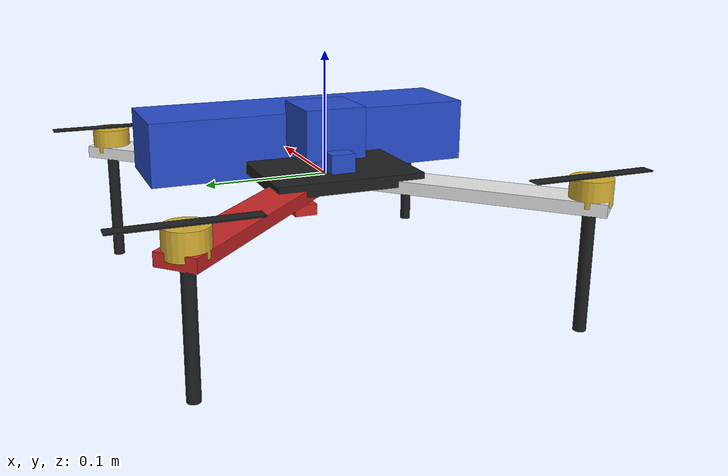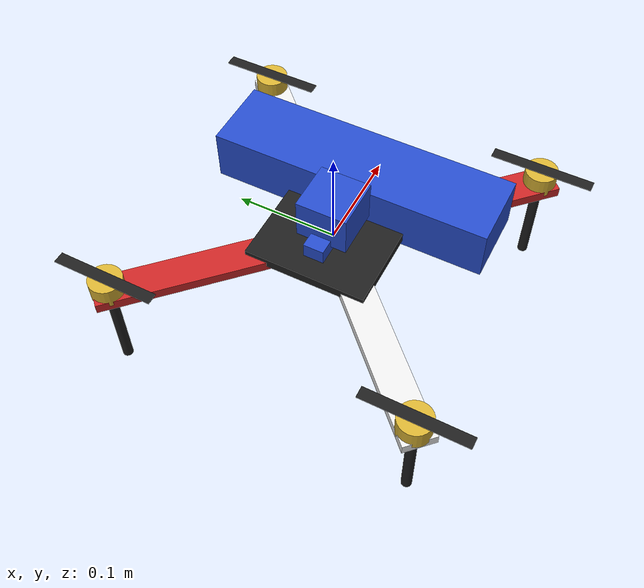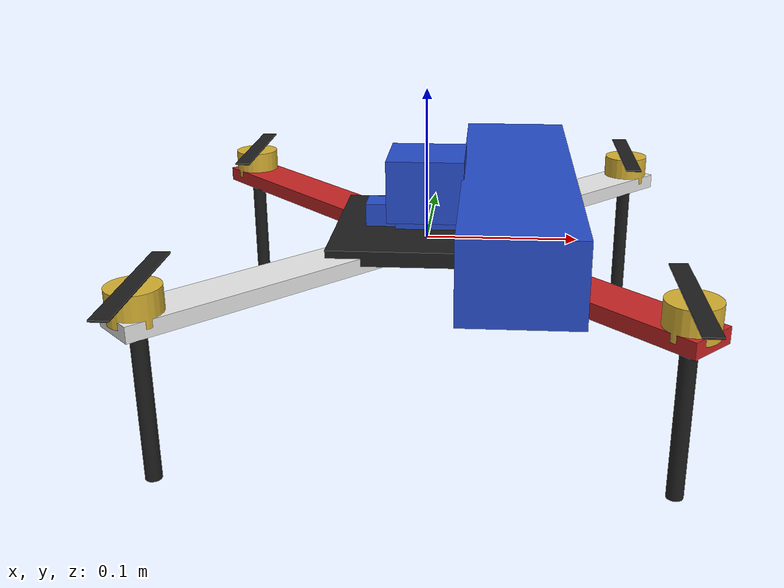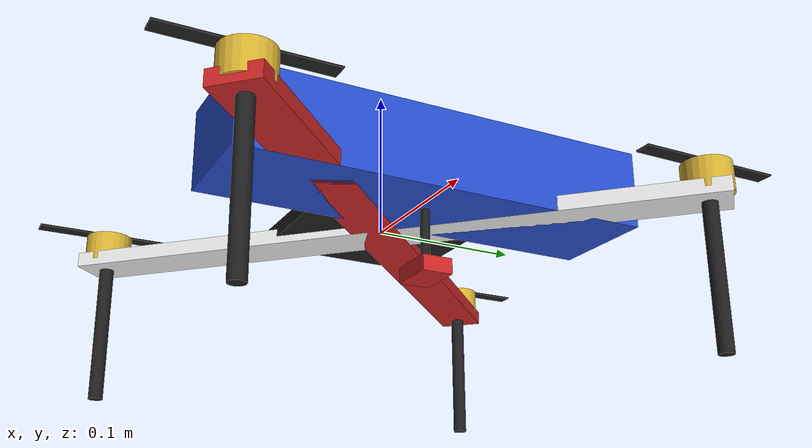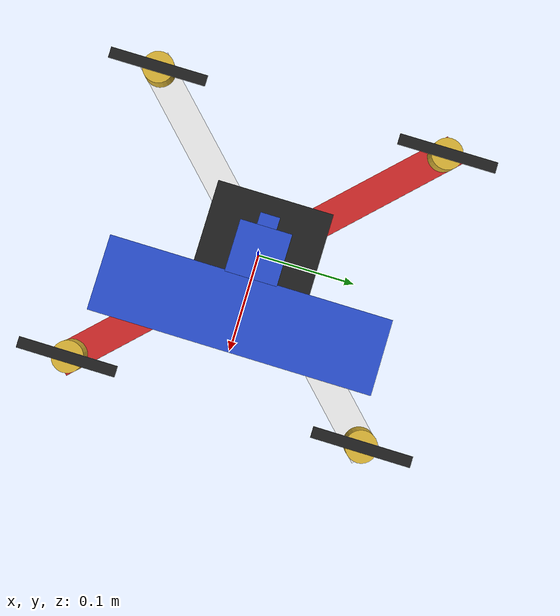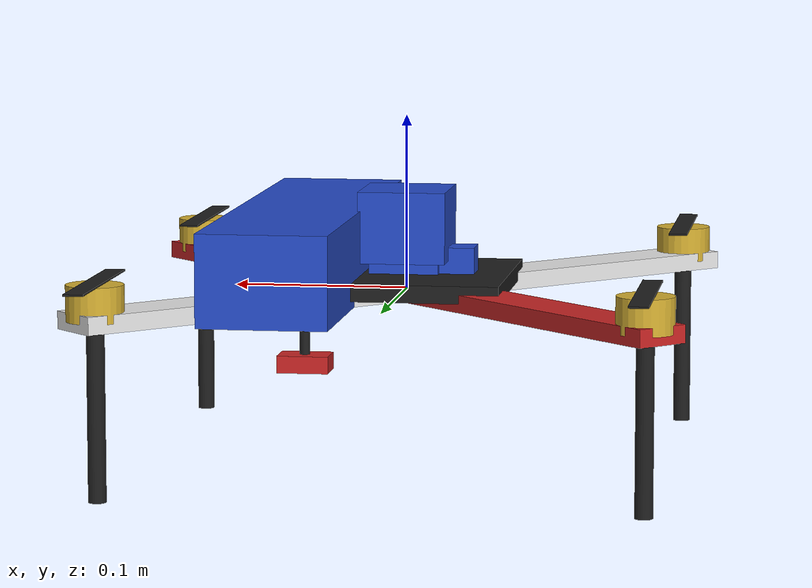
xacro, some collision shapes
<?xml version="1.0"?>
<robot xmlns:xacro="http://www.ros.org/wiki/xacro" name="quad">
	<xacro:property name="width" value="0.0315" />
	<xacro:property name="length" value="0.45" />
	<xacro:property name="height" value="0.01" />
	<xacro:property name="mass_fr" value="0.5" />
	<xacro:property name="mass_pr" value="0.0055" />
	<xacro:property name="pi_value" value="3.14159263" />
	<xacro:property name="radiusp" value="0.20" />
	<xacro:property name="prop_loc" value="0.15909" />
	<xacro:include filename="$(find quadcopter)/urdf/material.xacro" />
	<xacro:include filename="$(find quadcopter)/urdf/quad.gazebo" />
	<!-- Define inertial macro -->
	<xacro:macro name="default_inertial" params="mass p ix_value iy_value iz_value" >
		<inertial>
			<origin xyz="0 0 0" rpy="0 0 ${p}" />
			<mass value="${mass}" />
			<inertia ixx="${ix_value}" ixy="0" ixz="0"
					 iyy="${iy_value}" iyz="0" izz="${iz_value}" />
		</inertial>
	</xacro:macro>
	<link name="base_link1">
		<visual>
			<origin xyz="0 0 0" rpy="0 0 ${pi_value/4}" />

			<geometry>
				<box size="${width} ${length} ${height}" />
			</geometry>

			<material name="red" />
		</visual>

		<collision>
			<origin xyz="0 0 0" rpy="0 0 ${pi_value/4}" />

			<geometry>
				<box size="${width} ${length} ${height}" />
			</geometry>
		</collision>

		<xacro:default_inertial mass="${mass_fr}" p="${pi_value/4}" ix_value="${0.04989/2}" iy_value="${0.04989/2}" iz_value="${0.24057/2}" />

	</link>
	<link name="base_link2">
		<visual>
			<origin xyz="0 0 0" rpy="0 0 ${-pi_value/4}" />

			<geometry>
				<box size="${width} ${length} ${height}" />
			</geometry>

			<material name="white" />
		</visual>

		<collision>
			<origin xyz="0 0 0" rpy="0 0 ${-pi_value/4}" />

			<geometry>
				<box size="${width} ${length} ${height}" />
			</geometry>
		</collision>

		<xacro:default_inertial mass="${mass_fr}" p="${-pi_value/4}" ix_value="${0.04989/2}" iy_value="${0.04989/2}" iz_value="${0.24057/2}" />
	</link>
	<link name="plate1">
		<visual>
			<origin xyz="0 0 0" rpy="0 0 0" />

			<geometry>
				<box size="${0.12} ${0.12} ${0.01}" />
			</geometry>

			<material name="black" />
		</visual>

		<collision>
			<origin xyz="0 0 0" rpy="0 0 0" />

			<geometry>
				<box size="${0.12} ${0.12} ${0.01}" />
			</geometry>
		</collision>

		<xacro:default_inertial mass="${0.01}" p="${0}" ix_value="${0}" iy_value="${0}" iz_value="${2.4-5}" />
	</link>
	<link name="plate2">
		<visual>
			<origin xyz="0 0 0" rpy="0 0 0" />

			<geometry>
				<box size="${0.04} ${0.03} ${0.03}" />
			</geometry>

			<material name="blue" />
		</visual>

		<collision>
			<origin xyz="0 0 0" rpy="0 0 0" />

			<geometry>
				<box size="${0.04} ${0.03} ${0.03}" />
			</geometry>
		</collision>

		<xacro:default_inertial mass="${0.005}" p="${0}" ix_value="${0}" iy_value="${0}" iz_value="${8.1666-7}" />
	</link>
	<link name="cyl1">
		<visual>
			<origin xyz="0 0 0" rpy="0 0 0" />

			<geometry>
				<cylinder radius="0.016" length="0.02" />
			</geometry>

			<material name="golden" />
		</visual>

		<collision>
			<origin xyz="0 0 0" rpy="0 0 0" />

			<geometry>
				<cylinder radius="0.016" length="0.02" />
			</geometry>
		</collision>

		<xacro:default_inertial mass="${0.01}" p="${0}" ix_value="${8.95e-6}" iy_value="${8.95e-6}" iz_value="${2.23e-4}" />
	</link>
	<link name="cyl2">
		<visual>
			<origin xyz="0 0 0" rpy="0 0 0" />

			<geometry>
				<cylinder radius="0.016" length="0.02" />
			</geometry>

			<material name="golden" />
		</visual>

		<collision>
			<origin xyz="0 0 0" rpy="0 0 0" />

			<geometry>
				<cylinder radius="0.016" length="0.02" />
			</geometry>
		</collision>

		<xacro:default_inertial mass="${0.01}" p="${0}" ix_value="${8.95e-6}" iy_value="${8.95e-6}" iz_value="${2.23e-4}" />
	</link>
	<link name="cyl3">
		<visual>
			<origin xyz="0 0 0" rpy="0 0 0" />

			<geometry>
				<cylinder radius="0.016" length="0.02" />
			</geometry>

			<material name="golden" />
		</visual>

		<collision>
			<origin xyz="0 0 0" rpy="0 0 0" />

			<geometry>
				<cylinder radius="0.016" length="0.02" />
			</geometry>
		</collision>

		<xacro:default_inertial mass="${0.01}" p="${0}" ix_value="${8.95e-6}" iy_value="${8.95e-6}" iz_value="${2.23e-4}" />
	</link>
	<link name="cyl4">
		<visual>
			<origin xyz="0 0 0" rpy="0 0 0" />

			<geometry>
				<cylinder radius="0.016" length="0.02" />
			</geometry>

			<material name="golden" />
		</visual>

		<collision>
			<origin xyz="0 0 0" rpy="0 0 0" />

			<geometry>
				<cylinder radius="0.016" length="0.02" />
			</geometry>
		</collision>

		<xacro:default_inertial mass="${0.01}" p="${0}" ix_value="${8.95e-6}" iy_value="${8.95e-6}" iz_value="${2.23e-4}" />
	</link>

	<link name="stand1">
		<visual>
			<origin xyz="0 0 0" rpy="0 0 0" />

			<geometry>
				<cylinder radius="0.005" length="0.1" />
			</geometry>

			<material name="black" />
		</visual>

		<collision>
			<origin xyz="0 0 0" rpy="0 0 0" />

			<geometry>
				<cylinder radius="0.005" length="0.1" />
			</geometry>
		</collision>

		<xacro:default_inertial mass="${0.01}" p="${0}" ix_value="${8.95e-6}" iy_value="${8.95e-6}" iz_value="${2.23e-4}" />
	</link>

	<link name="stand2">
		<visual>
			<origin xyz="0 0 0" rpy="0 0 0" />

			<geometry>
				<cylinder radius="0.005" length="0.1" />
			</geometry>

			<material name="black" />
		</visual>

		<collision>
			<origin xyz="0 0 0" rpy="0 0 0" />

			<geometry>
				<cylinder radius="0.005" length="0.1" />
			</geometry>
		</collision>

		<xacro:default_inertial mass="${0.01}" p="${0}" ix_value="${8.95e-6}" iy_value="${8.95e-6}" iz_value="${2.23e-4}" />
	</link>

	<link name="stand3">
		<visual>
			<origin xyz="0 0 0" rpy="0 0 0" />

			<geometry>
				<cylinder radius="0.005" length="0.1" />
			</geometry>

			<material name="black" />
		</visual>

		<collision>
			<origin xyz="0 0 0" rpy="0 0 0" />

			<geometry>
				<cylinder radius="0.005" length="0.1" />
			</geometry>
		</collision>

		<xacro:default_inertial mass="${0.01}" p="${0}" ix_value="${8.95e-6}" iy_value="${8.95e-6}" iz_value="${2.23e-4}" />
	</link>

	<link name="stand4">
		<visual>
			<origin xyz="0 0 0" rpy="0 0 0" />

			<geometry>
				<cylinder radius="0.005" length="0.1" />
			</geometry>

			<material name="black" />
		</visual>

		<collision>
			<origin xyz="0 0 0" rpy="0 0 0" />

			<geometry>
				<cylinder radius="0.005" length="0.1" />
			</geometry>
		</collision>

		<xacro:default_inertial mass="${0.01}" p="${0}" ix_value="${8.95e-6}" iy_value="${8.95e-6}" iz_value="${2.23e-4}" />
	</link>

	<link name="camera_support">
		<visual>
			<origin xyz="0 0 0" rpy="0 0 0" />

			<geometry>
				<cylinder radius="0.003" length="0.04" />
			</geometry>

			<material name="black" />
		</visual>

		<collision>
			<origin xyz="0 0 0" rpy="0 0 0" />

			<geometry>
				<cylinder radius="0.003" length="0.04" />
			</geometry>
		</collision>

		<xacro:default_inertial mass="${0.01}" p="${0}" ix_value="${8.95e-6}" iy_value="${8.95e-6}" iz_value="${2.23e-4}" />
	</link>

	<link name="camera_link">
		<visual>
			<origin xyz="0 0 0" rpy="0 0 0" />
			<geometry>
				<box size="0.03 0.02 0.01" />
			</geometry>

			<material name="red" />

		</visual>

		<collision>
			<origin xyz="0 0 0" rpy="0 0 0" />
			<geometry>
				<box size="0.03 0.01 0.01" />
			</geometry>
		</collision>

		<xacro:default_inertial mass="${1e-5}" p="${0}" ix_value="${1e-6}" iy_value="${1e-6}" iz_value="${1e-6}" />
	</link>

	<link name="depth_camera_link">
		<visual>
			<origin xyz="0 0 0" rpy="0 0 0" />
			<geometry>
				<mesh filename="package://quadcopter/meshes/kinect.dae" scale="0.5 0.4 0.3" />
			</geometry>

			<material name="blue" />

		</visual>

		<collision>
			<origin xyz="0 0 0" rpy="0 0 0" />
			<geometry>
				<box size="0.073000 0.276000 0.052000" />
			</geometry>
		</collision>

		<xacro:default_inertial mass="${1e-5}" p="${0}" ix_value="${1e-6}" iy_value="${1e-6}" iz_value="${1e-6}" />
	</link>

	<link name="lidar_link">
		<visual>
			<origin xyz="0 0 0" rpy="0 0 0" />
			<geometry>
				<mesh filename="package://quadcopter/meshes/hokuyo.dae" scale="0.5 0.5 0.5" />
			</geometry>

			<material name="blue" />

		</visual>

		<collision>
			<origin xyz="0 0 -0.0145" rpy="0 0 0" />
			<geometry>
				<box size="0.05 0.05 0.041" />
			</geometry>
		</collision>
        <collision>
			<origin xyz="0 0 0.0205" rpy="0 0 0" />
			<geometry>
				<cylinder radius="0.021" length="0.029" />
			</geometry>
		</collision>

		<xacro:default_inertial mass="${1e-5}" p="${0}" ix_value="${1e-6}" iy_value="${1e-6}" iz_value="${1e-6}" />
	</link>

	<link name="imu_link">
		<visual>
			<origin xyz="0 0 0" rpy="0 0 0" />
			<geometry>
				<box size="0.02 0.02 0.02" />
			</geometry>

			<material name="blue" />

		</visual>

		<collision>
			<origin xyz="0 0 0" rpy="0 0 0" />
			<geometry>
				<box size="0.02 0.02 0.02" />
			</geometry>
		</collision>

		<xacro:default_inertial mass="${1e-5}" p="${0}" ix_value="${1e-6}" iy_value="${1e-6}" iz_value="${1e-6}" />
	</link>

	<!-- Propellers of the quad: fr, fl, br, bl -->
	<link name="prop_front_right">
		<visual>
			<origin xyz="0 0 0" rpy="0 0 0" />

			<geometry>
				<box size="${0.03302/3} ${radiusp*0.5} ${0.001}" />
			</geometry>

			<material name="black" />
		</visual>

		<collision>
			<origin xyz="0 0 0" rpy="0 0 0" />

			<geometry>
				<box size="${0.03302/3} ${radiusp*0.5} ${0.001}" />
			</geometry>
		</collision>

		<xacro:default_inertial mass="${mass_pr}" p="${0}" ix_value="${0}" iy_value="${0}" iz_value="${4.42448e-5}" />
	</link>

	<link name="prop_front_left">
		<visual>
			<origin xyz="0 0 0" rpy="0 0 0" />

			<geometry>
				<box size="${0.03302/3} ${radiusp*0.5} ${0.001}" />
			</geometry>

			<material name="black"/>
		</visual>

		<collision>
			<origin xyz="0 0 0" rpy="0 0 0" />

			<geometry>
				<box size="${0.03302/3} ${radiusp*0.5} ${0.001}" />
			</geometry>
		</collision>

		<xacro:default_inertial mass="${mass_pr}" p="${0}"  ix_value="${0}" iy_value="${0}" iz_value="${4.42448e-5}" />

	</link>

	<link name="prop_back_right">
		<visual>
			<origin xyz="0 0 0" rpy="0 0 0" />

			<geometry>
				<box size="${0.03302/3} ${radiusp*0.5} ${0.001}" />
			</geometry>

			<material name="black"/>
		</visual>

		<collision>
			<origin xyz="0 0 0" rpy="0 0 0" />

			<geometry>
				<box size="${0.03302/3} ${radiusp*0.5} ${0.001}" />
			</geometry>
		</collision>

		<xacro:default_inertial mass="${mass_pr}" p="${0}"  ix_value="${0}" iy_value="${0}" iz_value="${4.42448e-5}" />

	</link>

	<link name="prop_back_left">
		<visual>
			<origin xyz="0 0 0" rpy="0 0 0" />

			<geometry>
				<box size="${0.03302/3} ${radiusp*0.5} ${0.001}" />
			</geometry>

			<material name="black"/>
		</visual>

		<collision>
			<origin xyz="0 0 0" rpy="0 0 0" />

			<geometry>
				<box size="${0.03302/3} ${radiusp*0.5} ${0.001}" />
			</geometry>
		</collision>

		<xacro:default_inertial mass="${mass_pr}" p="${0}"  ix_value="${0}" iy_value="${0}" iz_value="${4.42448e-5}" />

	</link>
	<!-- Define the joint between the arms of the frame -->
	<joint name="center" type="fixed">
		<parent link="base_link1" />
		<child link="base_link2" />

		<origin xyz="0 0 0" rpy="0 0 0"/>
		<axis xyz="0 0 1" />
	</joint>

<!-- Define joint between stands and base -->

    <joint name="center_stand1" type="fixed">
		<parent link="base_link1" />
		<child link="stand1" />

		<origin xyz="${prop_loc - 0.01} ${prop_loc - 0.01} -0.05" rpy="0 0 0"/>
		<axis xyz="0 0 1" />
	</joint>
	<joint name="center_stand2" type="fixed">
		<parent link="base_link1" />
		<child link="stand2" />

		<origin xyz="${-prop_loc + 0.01} ${-prop_loc + 0.01} -0.05" rpy="0 0 0"/>
		<axis xyz="0 0 1" />
	</joint>
	<joint name="center_stand3" type="fixed">
		<parent link="base_link1" />
		<child link="stand3" />

		<origin xyz="${-prop_loc + 0.01} ${prop_loc - 0.01} -0.05" rpy="0 0 0"/>
		<axis xyz="0 0 1" />
	</joint>
	<joint name="center_stand4" type="fixed">
		<parent link="base_link1" />
		<child link="stand4" />

		<origin xyz="${prop_loc - 0.01} ${-prop_loc + 0.01} -0.05" rpy="0 0 0"/>
		<axis xyz="0 0 1" />
	</joint>

	<joint name="base_camera_support" type="fixed">
		<parent link="base_link1" />
		<child link="camera_support" />

		<origin xyz="${0.06} ${0} -0.02" rpy="0 0 0"/>
		<axis xyz="0 0 1" />
	</joint>
	<!-- Define joint between prop fr and frame -->
	<joint name="joint_front_right_prop" type="continuous">
		<parent link="base_link2" />
		<child link="prop_front_right" />
		<origin xyz="${prop_loc - 0.01} ${prop_loc - 0.01} 0.021" rpy="0 0 0"/>
		<axis xyz="0 0 1" />
	</joint>
	<!-- Define joint between prop fl and frame -->
	<joint name="joint_front_left_prop" type="continuous">
		<parent link="base_link1" />
		<child link="prop_front_left" />
		<origin xyz="${-prop_loc + 0.01} ${prop_loc - 0.01} 0.021" rpy="0 0 0" />
		<axis xyz="0 0 1" />
	</joint>
<!-- Define joint between prop br and frame -->
	<joint name="joint_back_right_prop" type="continuous">
		<parent link="base_link1" />
		<child link="prop_back_right" />
		<origin xyz="${prop_loc - 0.01} ${-prop_loc + 0.01} 0.021" rpy="0 0 0" />
		<axis xyz="0 0 1" />
	</joint>
<!-- Define joint between prop br and frame -->
	<joint name="joint_back_left_prop" type="continuous">
		<parent link="base_link2" />
		<child link="prop_back_left" />
		<origin xyz="${-prop_loc + 0.01} ${-prop_loc + 0.01} 0.021" rpy="0 0 0" />
		<axis xyz="0 0 1" />
	</joint>
<!-- Define joint between plate1 and frame -->
	<joint name="joint_plate1_frame" type="fixed">
		<parent link="base_link2" />
		<child link="plate1" />
		<origin xyz="${0} ${0} 0.005" rpy="0 0 0" />
		<axis xyz="0 0 1" />
	</joint>
<!-- Define joint between plate1 and plate2 -->
	<joint name="joint_plate2_frame" type="fixed">
		<parent link="plate1" />
		<child link="plate2" />
		<origin xyz="${0} ${0} 0.015" rpy="0 0 0" />
		<axis xyz="0 0 1" />
	</joint>
<!-- Define joint between cyl1 and frame -->
	<joint name="joint_cyl1_frame" type="fixed">
		<parent link="base_link2" />
		<child link="cyl1" />
		<origin xyz="${prop_loc - 0.01} ${prop_loc - 0.01} 0.01" rpy="0 0 0" />
		<axis xyz="0 0 1" />
	</joint>
<!-- Define joint between cyl2 and frame -->
	<joint name="joint_cyl2_frame" type="fixed">
		<parent link="base_link2" />
		<child link="cyl2" />
		<origin xyz="${-prop_loc + 0.01} ${-prop_loc + 0.01} 0.01" rpy="0 0 0" />
		<axis xyz="0 0 1" />
	</joint>
<!-- Define joint between cyl3 and frame -->
	<joint name="joint_cyl3_frame" type="fixed">
		<parent link="base_link1" />
		<child link="cyl3" />
		<origin xyz="${-prop_loc + 0.01} ${prop_loc - 0.01} 0.01" rpy="0 0 0" />
		<axis xyz="0 0 1" />
	</joint>
<!-- Define joint between cyl4 and frame -->
	<joint name="joint_cyl4_frame" type="fixed">
		<parent link="base_link1" />
		<child link="cyl4" />
		<origin xyz="${prop_loc - 0.01} ${-prop_loc + 0.01} 0.01" rpy="0 0 0" />
		<axis xyz="0 0 1" />
	</joint>
<!-- Define joint between Arduino and frame -->
	<joint name="joint_camera_frame" type="fixed">
		<parent link="camera_support" />
		<child link="camera_link" />
		<origin xyz="${0} ${0} -0.025" rpy="0 0 0" />
		<axis xyz="0 0 1" />
	</joint>

    <joint name="joint_depth_camera_frame" type="fixed">
		<parent link="plate1" />
		<child link="depth_camera_link" />
		<origin xyz="${0.06} ${0} 0.016" rpy="0 0 0" />
		<axis xyz="0 0 1" />
	</joint>

	<joint name="joint_lidar_frame" type="fixed">
		<parent link="plate2" />
		<child link="lidar_link" />
		<origin xyz="${0} ${0} 0.032" rpy="0 0 0" />
		<axis xyz="0 0 1" />
	</joint>

	<joint name="joint_imu_frame" type="fixed">
		<parent link="plate1" />
		<child link="imu_link" />
		<origin xyz="${-0.030} ${0} 0.01" rpy="0 0 0" />
		<axis xyz="0 0 1" />
	</joint>

<!-- Add transmission elements -->
	<transmission name="front_right_motor_joint" >
		<type>transmission_interface/SimpleTransmission</type>
		<joint name="joint_front_right_prop">
			<hardwareInterface>hardware_interface/VelocityJointInterface</hardwareInterface>
		</joint>
		<actuator name="BLDC_motor1">
			<hardwareInterface>hardware_interface/VelocityJointInterface</hardwareInterface>
			<mechanicalReduction>1</mechanicalReduction>
		</actuator>
	</transmission>

	<transmission name="front_left_motor_joint" >
		<type>transmission_interface/SimpleTransmission</type>
		<joint name="joint_front_left_prop">
			<hardwareInterface>hardware_interface/VelocityJointInterface</hardwareInterface>
		</joint>
		<actuator name="BLDC_motor2">
			<hardwareInterface>hardware_interface/VelocityJointInterface</hardwareInterface>
			<mechanicalReduction>1</mechanicalReduction>
		</actuator>
	</transmission>

	<transmission name="back_right_motor_joint" >
		<type>transmission_interface/SimpleTransmission</type>
		<joint name="joint_back_right_prop">
			<hardwareInterface>hardware_interface/VelocityJointInterface</hardwareInterface>
		</joint>
		<actuator name="BLDC_motor3">
			<hardwareInterface>hardware_interface/VelocityJointInterface</hardwareInterface>
			<mechanicalReduction>1</mechanicalReduction>
		</actuator>
	</transmission>

	<transmission name="back_left_motor_joint" >
		<type>transmission_interface/SimpleTransmission</type>
		<joint name="joint_back_left_prop">
			<hardwareInterface>hardware_interface/VelocityJointInterface</hardwareInterface>
		</joint>
		<actuator name="BLDC_motor4">
			<hardwareInterface>hardware_interface/VelocityJointInterface</hardwareInterface>
			<mechanicalReduction>1</mechanicalReduction>
		</actuator>
	</transmission>

</robot>
